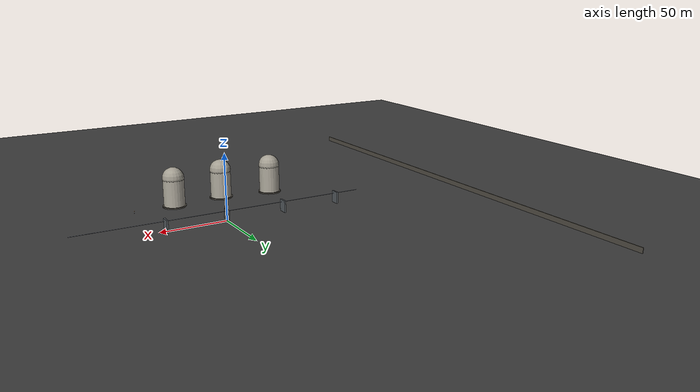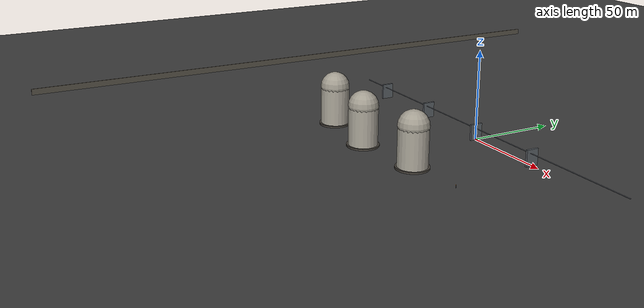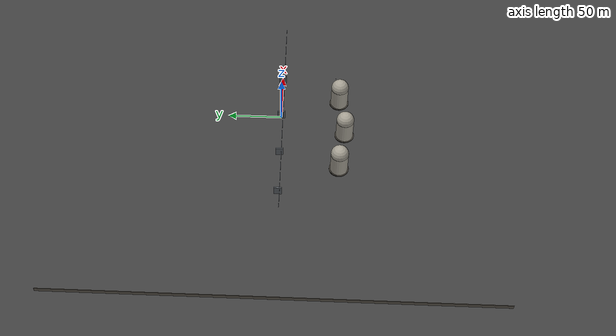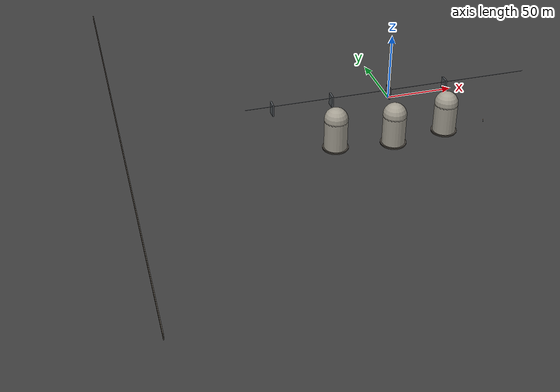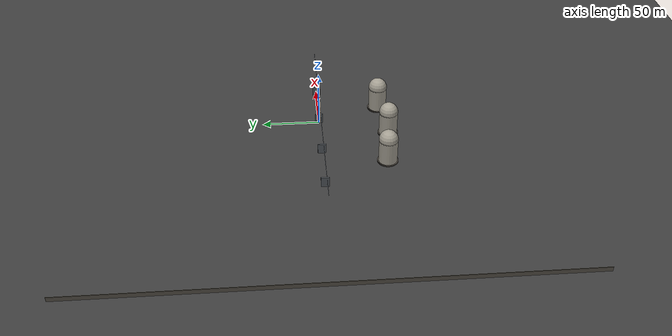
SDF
<sdf version="1.9">
 <world name="lng_terminal">
  <model name="ground">
   <static>true</static>
   <pose>0 0 -0.05 0 0 0</pose>
   <link name="l">
    <collision name="c"><geometry><box><size>2000 2000 0.1</size></box></geometry></collision>
    <visual name="v">
     <geometry><box><size>2000 2000 0.1</size></box></geometry>
     <material>
      <ambient>0.18 0.18 0.18 1</ambient>
      <diffuse>0.24 0.24 0.24 1</diffuse>
      <specular>0.03 0.03 0.03 1</specular>
      <pbr><metal><roughness>0.96</roughness><metalness>0.0</metalness></metal></pbr>
     </material>
    </visual>
   </link>
  </model>
  <model name="s1_fence_w">
   <static>true</static>
   <pose>-200 0 2 0 0 1.5707</pose>
   <link name="l">
    <collision name="c"><geometry><box><size>402 0.5 4</size></box></geometry></collision>
    <visual name="v">
     <geometry><box><size>402 0.5 4</size></box></geometry>
     <material><ambient>0.26 0.24 0.22 1</ambient><diffuse>0.34 0.32 0.28 1</diffuse></material>
    </visual>
   </link>
  </model>
  <model name="tank_b1">
   <static>true</static>
   <pose>-60 -55 0 0 0 0</pose>
   <link name="l">
    <collision name="c">
     <geometry><cylinder><radius>8</radius><length>22</length></cylinder></geometry>
    </collision>
    <visual name="body">
     <pose>0 0 11 0 0 0</pose>
     <geometry><cylinder><radius>8</radius><length>22</length></cylinder></geometry>
     <material>
      <ambient>0.60 0.58 0.54 1</ambient>
      <diffuse>0.68 0.66 0.61 1</diffuse>
      <specular>0.28 0.26 0.22 1</specular>
      <pbr><metal><roughness>0.42</roughness><metalness>0.72</metalness></metal></pbr>
     </material>
    </visual>
    <visual name="dome">
     <pose>0 0 22.5 0 0 0</pose>
     <geometry><sphere><radius>8.2</radius></sphere></geometry>
     <material>
      <ambient>0.56 0.54 0.50 1</ambient>
      <diffuse>0.64 0.62 0.57 1</diffuse>
      <specular>0.24 0.22 0.18 1</specular>
      <pbr><metal><roughness>0.48</roughness><metalness>0.68</metalness></metal></pbr>
     </material>
    </visual>
    <visual name="ring">
     <pose>0 0 0.5 0 0 0</pose>
     <geometry><cylinder><radius>9</radius><length>1.0</length></cylinder></geometry>
     <material>
      <ambient>0.20 0.18 0.16 1</ambient>
      <diffuse>0.28 0.26 0.23 1</diffuse>
      <specular>0.08 0.07 0.06 1</specular>
      <pbr><metal><roughness>0.68</roughness><metalness>0.55</metalness></metal></pbr>
     </material>
    </visual>
   </link>
  </model>
  <model name="tank_b2">
   <static>true</static>
   <pose>-20 -60 0 0 0 0</pose>
   <link name="l">
    <collision name="c">
     <geometry><cylinder><radius>8</radius><length>22</length></cylinder></geometry>
    </collision>
    <visual name="body">
     <pose>0 0 11 0 0 0</pose>
     <geometry><cylinder><radius>8</radius><length>22</length></cylinder></geometry>
     <material>
      <ambient>0.60 0.58 0.54 1</ambient>
      <diffuse>0.68 0.66 0.61 1</diffuse>
      <specular>0.28 0.26 0.22 1</specular>
      <pbr><metal><roughness>0.42</roughness><metalness>0.72</metalness></metal></pbr>
     </material>
    </visual>
    <visual name="dome">
     <pose>0 0 22.5 0 0 0</pose>
     <geometry><sphere><radius>8.2</radius></sphere></geometry>
     <material>
      <ambient>0.56 0.54 0.50 1</ambient>
      <diffuse>0.64 0.62 0.57 1</diffuse>
      <specular>0.24 0.22 0.18 1</specular>
      <pbr><metal><roughness>0.48</roughness><metalness>0.68</metalness></metal></pbr>
     </material>
    </visual>
    <visual name="ring">
     <pose>0 0 0.5 0 0 0</pose>
     <geometry><cylinder><radius>9</radius><length>1.0</length></cylinder></geometry>
     <material>
      <ambient>0.20 0.18 0.16 1</ambient>
      <diffuse>0.28 0.26 0.23 1</diffuse>
      <specular>0.08 0.07 0.06 1</specular>
      <pbr><metal><roughness>0.68</roughness><metalness>0.55</metalness></metal></pbr>
     </material>
    </visual>
   </link>
  </model>
  <model name="tank_b3">
   <static>true</static>
   <pose>20 -55 0 0 0 0</pose>
   <link name="l">
    <collision name="c">
     <geometry><cylinder><radius>8</radius><length>22</length></cylinder></geometry>
    </collision>
    <visual name="body">
     <pose>0 0 11 0 0 0</pose>
     <geometry><cylinder><radius>8</radius><length>22</length></cylinder></geometry>
     <material>
      <ambient>0.60 0.58 0.54 1</ambient>
      <diffuse>0.68 0.66 0.61 1</diffuse>
      <specular>0.28 0.26 0.22 1</specular>
      <pbr><metal><roughness>0.42</roughness><metalness>0.72</metalness></metal></pbr>
     </material>
    </visual>
    <visual name="dome">
     <pose>0 0 22.5 0 0 0</pose>
     <geometry><sphere><radius>8.2</radius></sphere></geometry>
     <material>
      <ambient>0.56 0.54 0.50 1</ambient>
      <diffuse>0.64 0.62 0.57 1</diffuse>
      <specular>0.24 0.22 0.18 1</specular>
      <pbr><metal><roughness>0.48</roughness><metalness>0.68</metalness></metal></pbr>
     </material>
    </visual>
    <visual name="ring">
     <pose>0 0 0.5 0 0 0</pose>
     <geometry><cylinder><radius>9</radius><length>1.0</length></cylinder></geometry>
     <material>
      <ambient>0.20 0.18 0.16 1</ambient>
      <diffuse>0.28 0.26 0.23 1</diffuse>
      <specular>0.08 0.07 0.06 1</specular>
      <pbr><metal><roughness>0.68</roughness><metalness>0.55</metalness></metal></pbr>
     </material>
    </visual>
   </link>
  </model>
  <include><uri>model://snowfall</uri><name>snowfall_main</name><pose>0 0 80 0 0 0</pose></include>
  <model name="rk1">
   <static>true</static>
   <pose>-90 0 4.5 0 0 0</pose>
   <link name="l">
    <collision name="c"><geometry><box><size>1.2 7 9</size></box></geometry></collision>
    <visual name="v">
     <geometry><box><size>1.2 7 9</size></box></geometry>
     <material>
      <ambient>0.26 0.28 0.30 1</ambient>
      <diffuse>0.34 0.36 0.38 1</diffuse>
      <pbr><metal><roughness>0.38</roughness><metalness>0.82</metalness></metal></pbr>
     </material>
    </visual>
   </link>
  </model>
  <model name="rk2">
   <static>true</static>
   <pose>-45 0 4.5 0 0 0</pose>
   <link name="l">
    <collision name="c"><geometry><box><size>1.2 7 9</size></box></geometry></collision>
    <visual name="v">
     <geometry><box><size>1.2 7 9</size></box></geometry>
     <material>
      <ambient>0.26 0.28 0.30 1</ambient>
      <diffuse>0.34 0.36 0.38 1</diffuse>
      <pbr><metal><roughness>0.38</roughness><metalness>0.82</metalness></metal></pbr>
     </material>
    </visual>
   </link>
  </model>
  <model name="rk3">
   <static>true</static>
   <pose>0 0 4.5 0 0 0</pose>
   <link name="l">
    <collision name="c"><geometry><box><size>1.2 7 9</size></box></geometry></collision>
    <visual name="v">
     <geometry><box><size>1.2 7 9</size></box></geometry>
     <material>
      <ambient>0.26 0.28 0.30 1</ambient>
      <diffuse>0.34 0.36 0.38 1</diffuse>
      <pbr><metal><roughness>0.38</roughness><metalness>0.82</metalness></metal></pbr>
     </material>
    </visual>
   </link>
  </model>
  <model name="rk4">
   <static>true</static>
   <pose>45 0 4.5 0 0 0</pose>
   <link name="l">
    <collision name="c"><geometry><box><size>1.2 7 9</size></box></geometry></collision>
    <visual name="v">
     <geometry><box><size>1.2 7 9</size></box></geometry>
     <material>
      <ambient>0.26 0.28 0.30 1</ambient>
      <diffuse>0.34 0.36 0.38 1</diffuse>
      <pbr><metal><roughness>0.38</roughness><metalness>0.82</metalness></metal></pbr>
     </material>
    </visual>
   </link>
  </model>
  <model name="pipe_sec">
   <static>true</static>
   <pose>0 -1.5 7.2 0 1.5707 0</pose>
   <link name="l">
    <collision name="c">
     <geometry><cylinder><radius>0.18</radius><length>220</length></cylinder></geometry>
    </collision>
    <visual name="v">
     <geometry><cylinder><radius>0.18</radius><length>220</length></cylinder></geometry>
     <material>
      <ambient>0.44 0.46 0.50 1</ambient>
      <diffuse>0.52 0.54 0.58 1</diffuse>
      <pbr><metal><roughness>0.30</roughness><metalness>0.80</metalness></metal></pbr>
     </material>
    </visual>
   </link>
  </model>
  <model name="gs04_post">
   <static>true</static>
   <pose>52 -52 0 0 0 0</pose>
   <link name="l">
    <visual name="v">
     <pose>0 0 0.9 0 0 0</pose>
     <geometry><cylinder><radius>0.05</radius><length>1.8</length></cylinder></geometry>
     <material>
      <ambient>0.24 0.24 0.26 1</ambient>
      <diffuse>0.30 0.30 0.33 1</diffuse>
      <pbr><metal><roughness>0.32</roughness><metalness>0.82</metalness></metal></pbr>
     </material>
    </visual>
   </link>
  </model>
  <model name="gas_sensor_0">
   <static>true</static>
   <pose>52 -52 1.95 0 0 0</pose>
   <link name="body">
    <visual name="box">
     <geometry><box><size>0.25 0.25 0.4</size></box></geometry>
     <material>
      <ambient>0.82 0.38 0.0 1</ambient>
      <diffuse>0.92 0.46 0.0 1</diffuse>
      <pbr><metal><roughness>0.5</roughness><metalness>0.1</metalness></metal></pbr>
     </material>
    </visual>
    <visual name="led">
     <pose>0 0.135 0.12 0 0 0</pose>
     <geometry><sphere><radius>0.04</radius></sphere></geometry>
     <material>
      <ambient>1.0 0.04 0.04 1</ambient>
      <diffuse>1.0 0.04 0.04 1</diffuse>
      <emissive>0.90 0.0 0.0 1</emissive>
     </material>
    </visual>
    <sensor name="gas_sensor_0" type="gpu_lidar">
     <pose>0 0 0.2 0 0 0</pose>
     <update_rate>10</update_rate>
     <topic>/gas_sensor_0/scan</topic>
     <lidar>
      <scan>
       <horizontal>
        <samples>360</samples>
        <resolution>1</resolution>
        <min_angle>-3.14159</min_angle>
        <max_angle>3.14159</max_angle>
       </horizontal>
       <vertical>
        <samples>1</samples>
        <resolution>1</resolution>
        <min_angle>0</min_angle>
        <max_angle>0</max_angle>
       </vertical>
      </scan>
      <range><min>0.1</min><max>30.0</max><resolution>0.01</resolution></range>
      <noise><type>gaussian</type><mean>0</mean><stddev>0.01</stddev></noise>
     </lidar>
    </sensor>
   </link>
  </model>
 </world>
</sdf>
